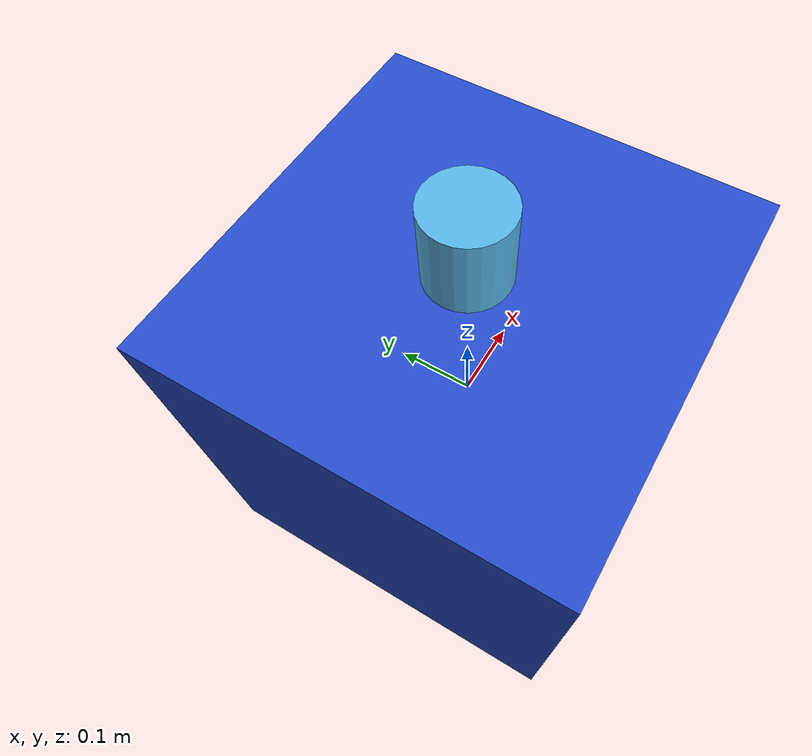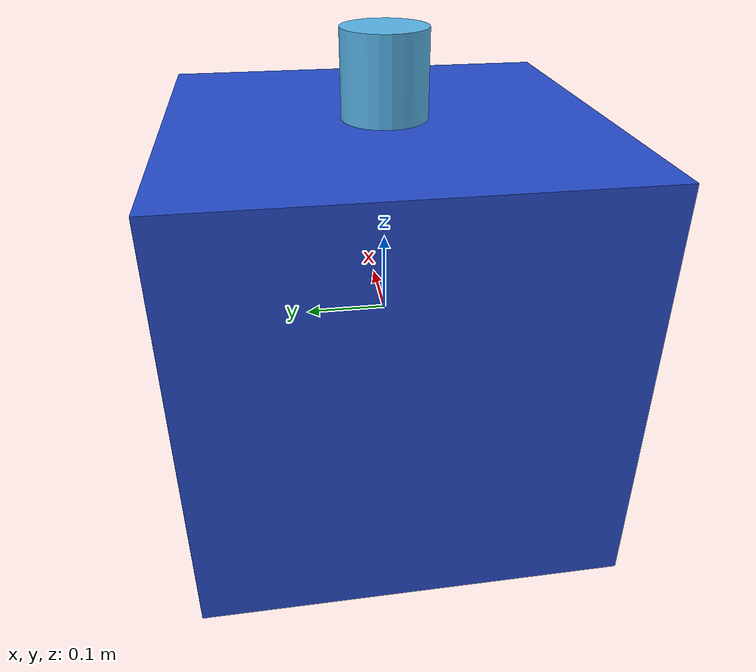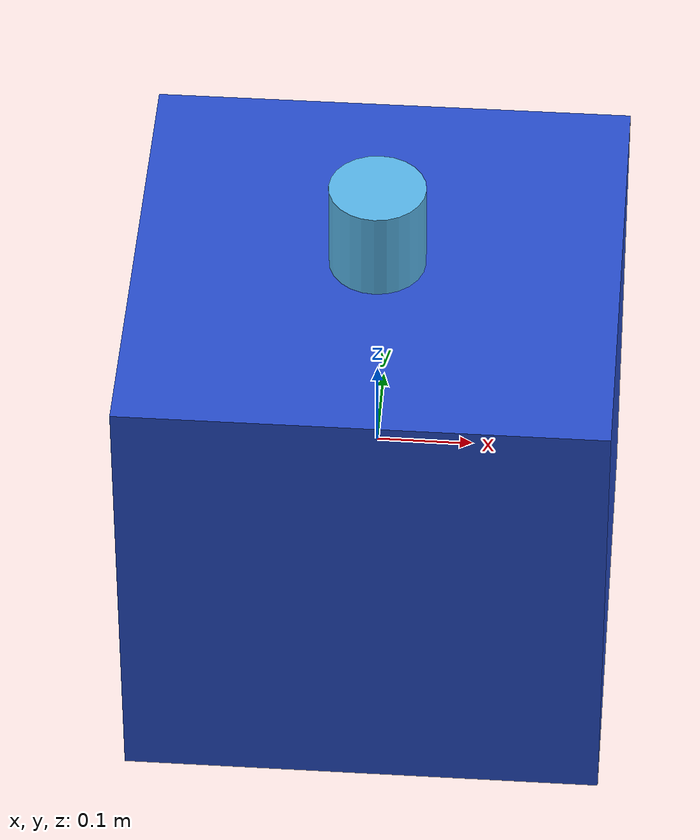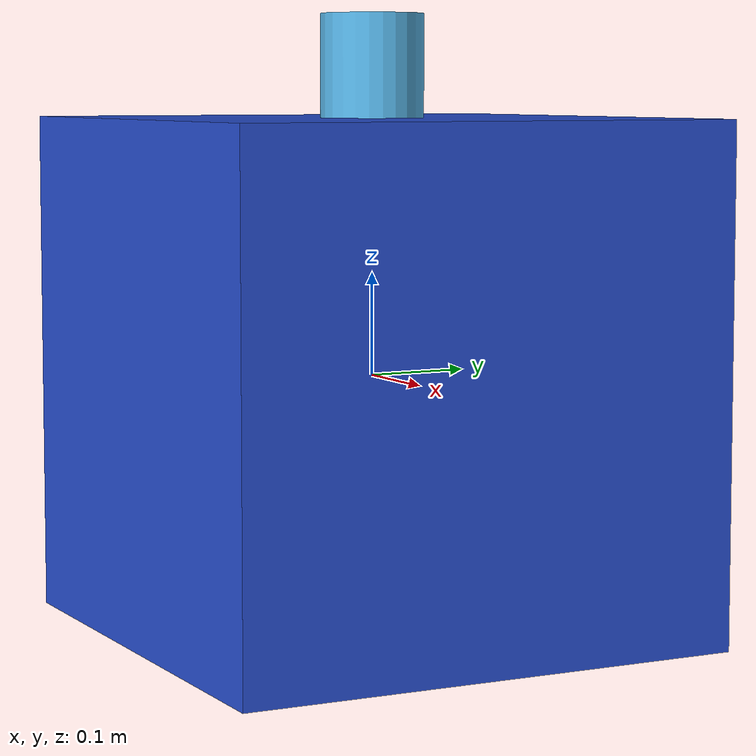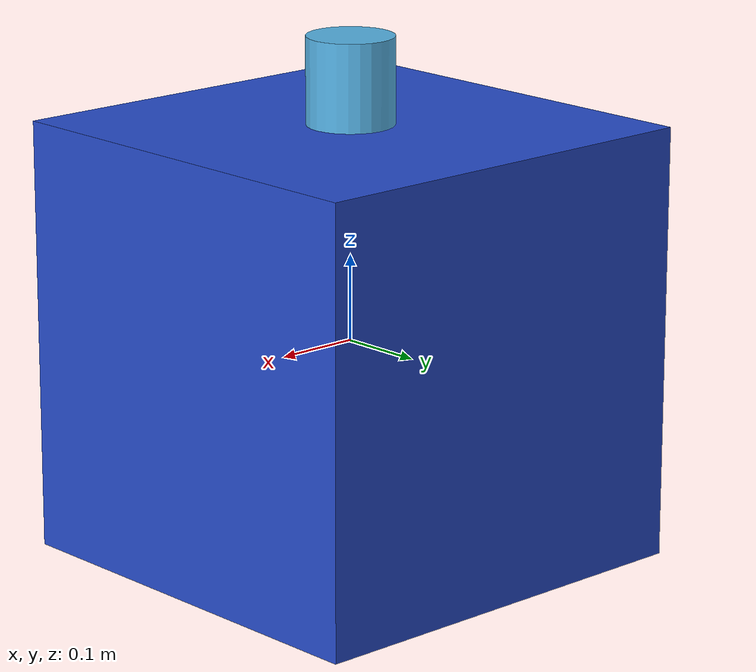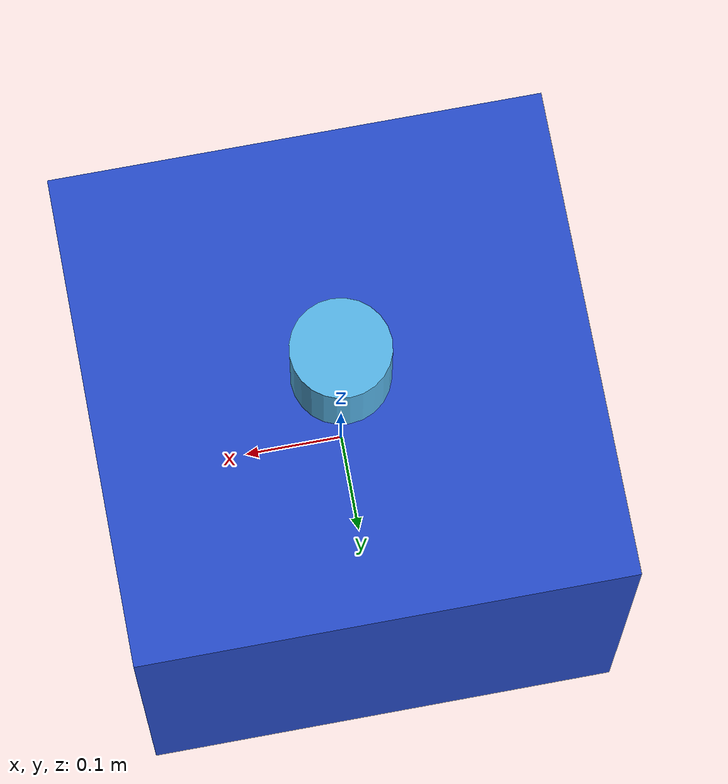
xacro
<robot name="cube_bot" xmlns:xacro="http://www.ros.org/wiki/xacro">

  <link name="base_link">
    <visual>
      <geometry>
        <box size="0.5 0.5 0.5"/>
      </geometry>
      <material name="blue"/>
    </visual>
    <collision>
      <geometry>
        <box size="0.5 0.5 0.5"/>
      </geometry>
    </collision>
    <inertial>
      <mass value="1.0"/>
      <inertia ixx="0.1" iyy="0.1" izz="0.1"/>
    </inertial>
  </link>

  <!-- Lidar -->
  <link name="lidar_link">
    <visual>
      <geometry>
        <cylinder radius="0.05" length="0.1"/>
      </geometry>
    </visual>
  </link>

  <joint name="lidar_joint" type="fixed">
    <parent link="base_link"/>
    <child link="lidar_link"/>
    <origin xyz="0 0 0.3"/>
  </joint>

  <gazebo reference="lidar_link">
  <sensor name="lidar" type="ray">
    <update_rate>10</update_rate>
    <ray>
      <scan>
        <horizontal>
          <samples>360</samples>
          <min_angle>-3.14</min_angle>
          <max_angle>3.14</max_angle>
        </horizontal>
      </scan>
      <range>
        <min>0.1</min>
        <max>10.0</max>
      </range>
    </ray>
    <plugin name="gazebo_ros_laser" filename="libgazebo_ros_ray_sensor.so">
      <ros>
        <remapping>~/out:=scan</remapping>
      </ros>
    </plugin>
  </sensor>
  <plugin name="cmd_vel_plugin" filename="libgazebo_ros_diff_drive.so">
    <ros>
      <namespace>/</namespace>
    </ros>
    <command_topic>cmd_vel</command_topic>
    <odometry_topic>odom</odometry_topic>
    <robot_base_frame>base_link</robot_base_frame>
  </plugin>
</gazebo>

</robot>
